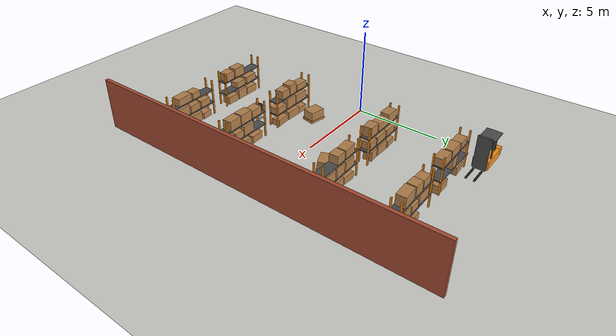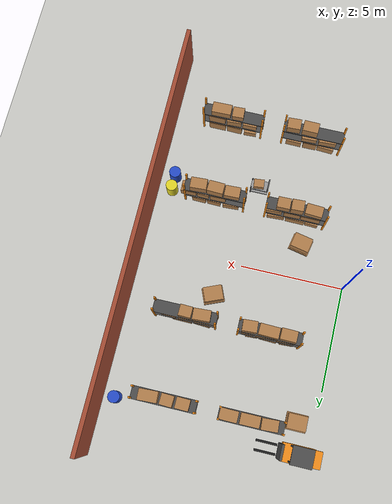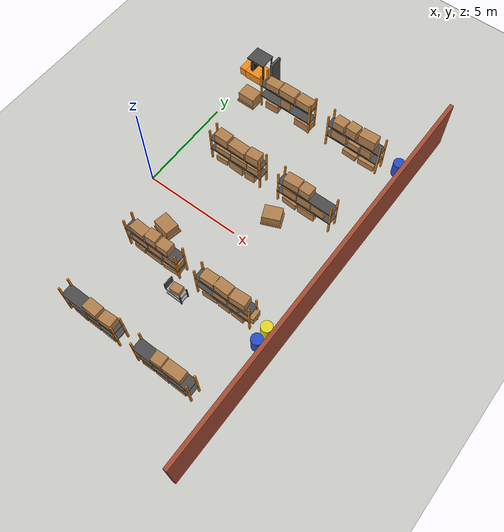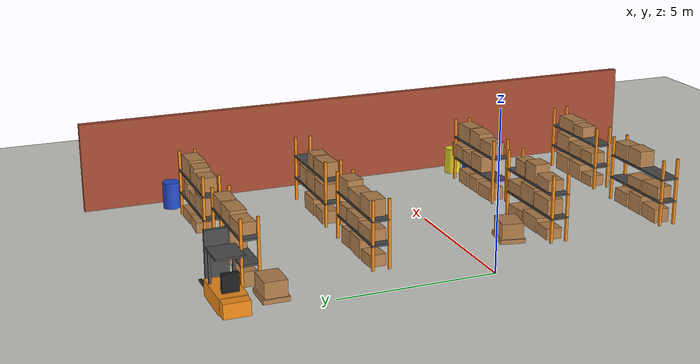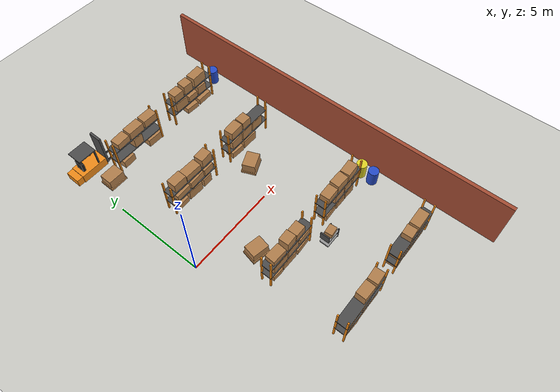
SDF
<sdf version="1.6">
 <world name="warehouse_w4_visually_degraded">
  <model name="ground_plane">
   <static>true</static>
   <link name="link">
    <collision name="collision">
     <geometry><plane><normal>0 0 1</normal><size>25 25</size></plane></geometry>
     <surface><friction><ode><mu>100</mu><mu2>50</mu2></ode></friction></surface>
    </collision>
    <visual name="visual">
     <geometry><plane><normal>0 0 1</normal><size>25 25</size></plane></geometry>
     <material>
      <script><uri>file://media/materials/scripts/gazebo.material</uri><name>Gazebo/CeilingTiled</name></script>
     </material>
    </visual>
   </link>
  </model>
  <model name="wall_east">
   <static>true</static>
   <pose>10 0 1.5 0 0 1.5708</pose>
   <link name="link">
    <collision name="col"><geometry><box><size>20.4 0.2 3.0</size></box></geometry></collision>
    <visual name="vis">
     <geometry><box><size>20.4 0.2 3.0</size></box></geometry>
     <material>
      <script><uri>file://media/materials/scripts/gazebo.material</uri><name>Gazebo/Bricks</name></script>
     </material>
    </visual>
   </link>
  </model>
  <model name="rack_r1_c">
   <static>true</static>
   <pose>3 7 0 0 0 0</pose>
   <link name="link">
    <collision name="col">
     <pose>0 0 1.1 0 0 0</pose>
     <geometry><box><size>3.0 0.6 2.2</size></box></geometry>
    </collision>
    <visual name="up_-1-0">
     <pose>-1.460 -0.260 1.100 0 0 0.000</pose>
     <geometry><box><size>0.080 0.080 2.200</size></box></geometry>
     <material>
      <script><uri>file://media/materials/scripts/gazebo.material</uri><name>Gazebo/Orange</name></script>
     </material>
    </visual>
    <visual name="up_-1+0">
     <pose>-1.460 0.260 1.100 0 0 0.000</pose>
     <geometry><box><size>0.080 0.080 2.200</size></box></geometry>
     <material>
      <script><uri>file://media/materials/scripts/gazebo.material</uri><name>Gazebo/Orange</name></script>
     </material>
    </visual>
    <visual name="up_+1-0">
     <pose>1.460 -0.260 1.100 0 0 0.000</pose>
     <geometry><box><size>0.080 0.080 2.200</size></box></geometry>
     <material>
      <script><uri>file://media/materials/scripts/gazebo.material</uri><name>Gazebo/Orange</name></script>
     </material>
    </visual>
    <visual name="up_+1+0">
     <pose>1.460 0.260 1.100 0 0 0.000</pose>
     <geometry><box><size>0.080 0.080 2.200</size></box></geometry>
     <material>
      <script><uri>file://media/materials/scripts/gazebo.material</uri><name>Gazebo/Orange</name></script>
     </material>
    </visual>
    <visual name="s1">
     <pose>0.000 0.000 0.780 0 0 0.000</pose>
     <geometry><box><size>3.000 0.600 0.060</size></box></geometry>
     <material>
      <script><uri>file://media/materials/scripts/gazebo.material</uri><name>Gazebo/DarkGrey</name></script>
     </material>
    </visual>
    <visual name="s2">
     <pose>0.000 0.000 1.550 0 0 0.000</pose>
     <geometry><box><size>3.000 0.600 0.060</size></box></geometry>
     <material>
      <script><uri>file://media/materials/scripts/gazebo.material</uri><name>Gazebo/DarkGrey</name></script>
     </material>
    </visual>
    <visual name="box_f0">
     <pose>-0.838 0.000 0.236 0 0 0.045</pose>
     <geometry><box><size>0.724 0.520 0.473</size></box></geometry>
     <material>
      <script><uri>file://media/materials/scripts/gazebo.material</uri><name>Gazebo/Wood</name></script>
     </material>
    </visual>
    <visual name="box_f2">
     <pose>1.030 0.000 0.244 0 0 -0.015</pose>
     <geometry><box><size>0.887 0.520 0.487</size></box></geometry>
     <material>
      <script><uri>file://media/materials/scripts/gazebo.material</uri><name>Gazebo/WoodPallet</name></script>
     </material>
    </visual>
    <visual name="box_a1">
     <pose>0.006 0.000 1.110 0 0 0.040</pose>
     <geometry><box><size>0.558 0.520 0.601</size></box></geometry>
     <material>
      <script><uri>file://media/materials/scripts/gazebo.material</uri><name>Gazebo/Wood</name></script>
     </material>
    </visual>
    <visual name="box_b0">
     <pose>-0.818 0.000 1.772 0 0 0.054</pose>
     <geometry><box><size>0.763 0.520 0.384</size></box></geometry>
     <material>
      <script><uri>file://media/materials/scripts/gazebo.material</uri><name>Gazebo/WoodPallet</name></script>
     </material>
    </visual>
    <visual name="box_b1">
     <pose>0.074 0.000 1.812 0 0 0.005</pose>
     <geometry><box><size>0.899 0.520 0.464</size></box></geometry>
     <material>
      <script><uri>file://media/materials/scripts/gazebo.material</uri><name>Gazebo/WoodPallet</name></script>
     </material>
    </visual>
    <visual name="box_b2">
     <pose>1.036 0.000 1.809 0 0 -0.015</pose>
     <geometry><box><size>0.835 0.520 0.458</size></box></geometry>
     <material>
      <script><uri>file://media/materials/scripts/gazebo.material</uri><name>Gazebo/WoodPallet</name></script>
     </material>
    </visual>
   </link>
  </model>
  <model name="rack_r1_d">
   <static>true</static>
   <pose>7 7 0 0 0 0</pose>
   <link name="link">
    <collision name="col">
     <pose>0 0 1.1 0 0 0</pose>
     <geometry><box><size>3.0 0.6 2.2</size></box></geometry>
    </collision>
    <visual name="up_-1-0">
     <pose>-1.460 -0.260 1.100 0 0 0.000</pose>
     <geometry><box><size>0.080 0.080 2.200</size></box></geometry>
     <material>
      <script><uri>file://media/materials/scripts/gazebo.material</uri><name>Gazebo/Orange</name></script>
     </material>
    </visual>
    <visual name="up_-1+0">
     <pose>-1.460 0.260 1.100 0 0 0.000</pose>
     <geometry><box><size>0.080 0.080 2.200</size></box></geometry>
     <material>
      <script><uri>file://media/materials/scripts/gazebo.material</uri><name>Gazebo/Orange</name></script>
     </material>
    </visual>
    <visual name="up_+1-0">
     <pose>1.460 -0.260 1.100 0 0 0.000</pose>
     <geometry><box><size>0.080 0.080 2.200</size></box></geometry>
     <material>
      <script><uri>file://media/materials/scripts/gazebo.material</uri><name>Gazebo/Orange</name></script>
     </material>
    </visual>
    <visual name="up_+1+0">
     <pose>1.460 0.260 1.100 0 0 0.000</pose>
     <geometry><box><size>0.080 0.080 2.200</size></box></geometry>
     <material>
      <script><uri>file://media/materials/scripts/gazebo.material</uri><name>Gazebo/Orange</name></script>
     </material>
    </visual>
    <visual name="s1">
     <pose>0.000 0.000 0.780 0 0 0.000</pose>
     <geometry><box><size>3.000 0.600 0.060</size></box></geometry>
     <material>
      <script><uri>file://media/materials/scripts/gazebo.material</uri><name>Gazebo/DarkGrey</name></script>
     </material>
    </visual>
    <visual name="s2">
     <pose>0.000 0.000 1.550 0 0 0.000</pose>
     <geometry><box><size>3.000 0.600 0.060</size></box></geometry>
     <material>
      <script><uri>file://media/materials/scripts/gazebo.material</uri><name>Gazebo/DarkGrey</name></script>
     </material>
    </visual>
    <visual name="box_f1">
     <pose>-0.074 0.000 0.176 0 0 -0.053</pose>
     <geometry><box><size>0.785 0.520 0.352</size></box></geometry>
     <material>
      <script><uri>file://media/materials/scripts/gazebo.material</uri><name>Gazebo/WoodPallet</name></script>
     </material>
    </visual>
    <visual name="box_f2">
     <pose>0.878 0.000 0.185 0 0 0.020</pose>
     <geometry><box><size>0.894 0.520 0.369</size></box></geometry>
     <material>
      <script><uri>file://media/materials/scripts/gazebo.material</uri><name>Gazebo/WoodPallet</name></script>
     </material>
    </visual>
    <visual name="box_a0">
     <pose>-0.780 0.000 1.104 0 0 -0.031</pose>
     <geometry><box><size>0.839 0.520 0.588</size></box></geometry>
     <material>
      <script><uri>file://media/materials/scripts/gazebo.material</uri><name>Gazebo/Wood</name></script>
     </material>
    </visual>
    <visual name="box_a1">
     <pose>0.057 0.000 0.998 0 0 -0.009</pose>
     <geometry><box><size>0.626 0.520 0.376</size></box></geometry>
     <material>
      <script><uri>file://media/materials/scripts/gazebo.material</uri><name>Gazebo/Wood</name></script>
     </material>
    </visual>
    <visual name="box_a2">
     <pose>0.765 0.000 1.073 0 0 -0.053</pose>
     <geometry><box><size>0.572 0.520 0.526</size></box></geometry>
     <material>
      <script><uri>file://media/materials/scripts/gazebo.material</uri><name>Gazebo/WoodPallet</name></script>
     </material>
    </visual>
    <visual name="box_b0">
     <pose>-0.887 0.000 1.816 0 0 -0.027</pose>
     <geometry><box><size>0.626 0.520 0.471</size></box></geometry>
     <material>
      <script><uri>file://media/materials/scripts/gazebo.material</uri><name>Gazebo/WoodPallet</name></script>
     </material>
    </visual>
    <visual name="box_b1">
     <pose>-0.174 0.000 1.864 0 0 -0.048</pose>
     <geometry><box><size>0.580 0.520 0.568</size></box></geometry>
     <material>
      <script><uri>file://media/materials/scripts/gazebo.material</uri><name>Gazebo/WoodPallet</name></script>
     </material>
    </visual>
    <visual name="box_b2">
     <pose>0.678 0.000 1.886 0 0 0.042</pose>
     <geometry><box><size>0.884 0.520 0.612</size></box></geometry>
     <material>
      <script><uri>file://media/materials/scripts/gazebo.material</uri><name>Gazebo/WoodPallet</name></script>
     </material>
    </visual>
   </link>
  </model>
  <model name="rack_r2_c">
   <static>true</static>
   <pose>3 3 0 0 0 0</pose>
   <link name="link">
    <collision name="col">
     <pose>0 0 1.1 0 0 0</pose>
     <geometry><box><size>3.0 0.6 2.2</size></box></geometry>
    </collision>
    <visual name="up_-1-0">
     <pose>-1.460 -0.260 1.100 0 0 0.000</pose>
     <geometry><box><size>0.080 0.080 2.200</size></box></geometry>
     <material>
      <script><uri>file://media/materials/scripts/gazebo.material</uri><name>Gazebo/Orange</name></script>
     </material>
    </visual>
    <visual name="up_-1+0">
     <pose>-1.460 0.260 1.100 0 0 0.000</pose>
     <geometry><box><size>0.080 0.080 2.200</size></box></geometry>
     <material>
      <script><uri>file://media/materials/scripts/gazebo.material</uri><name>Gazebo/Orange</name></script>
     </material>
    </visual>
    <visual name="up_+1-0">
     <pose>1.460 -0.260 1.100 0 0 0.000</pose>
     <geometry><box><size>0.080 0.080 2.200</size></box></geometry>
     <material>
      <script><uri>file://media/materials/scripts/gazebo.material</uri><name>Gazebo/Orange</name></script>
     </material>
    </visual>
    <visual name="up_+1+0">
     <pose>1.460 0.260 1.100 0 0 0.000</pose>
     <geometry><box><size>0.080 0.080 2.200</size></box></geometry>
     <material>
      <script><uri>file://media/materials/scripts/gazebo.material</uri><name>Gazebo/Orange</name></script>
     </material>
    </visual>
    <visual name="s1">
     <pose>0.000 0.000 0.780 0 0 0.000</pose>
     <geometry><box><size>3.000 0.600 0.060</size></box></geometry>
     <material>
      <script><uri>file://media/materials/scripts/gazebo.material</uri><name>Gazebo/DarkGrey</name></script>
     </material>
    </visual>
    <visual name="s2">
     <pose>0.000 0.000 1.550 0 0 0.000</pose>
     <geometry><box><size>3.000 0.600 0.060</size></box></geometry>
     <material>
      <script><uri>file://media/materials/scripts/gazebo.material</uri><name>Gazebo/DarkGrey</name></script>
     </material>
    </visual>
    <visual name="box_f0">
     <pose>-0.875 0.000 0.189 0 0 0.046</pose>
     <geometry><box><size>0.650 0.520 0.378</size></box></geometry>
     <material>
      <script><uri>file://media/materials/scripts/gazebo.material</uri><name>Gazebo/Wood</name></script>
     </material>
    </visual>
    <visual name="box_f1">
     <pose>-0.007 0.000 0.300 0 0 -0.040</pose>
     <geometry><box><size>0.850 0.520 0.600</size></box></geometry>
     <material>
      <script><uri>file://media/materials/scripts/gazebo.material</uri><name>Gazebo/WoodPallet</name></script>
     </material>
    </visual>
    <visual name="box_f2">
     <pose>0.808 0.000 0.274 0 0 0.052</pose>
     <geometry><box><size>0.560 0.520 0.549</size></box></geometry>
     <material>
      <script><uri>file://media/materials/scripts/gazebo.material</uri><name>Gazebo/WoodPallet</name></script>
     </material>
    </visual>
    <visual name="box_a0">
     <pose>-0.768 0.000 1.000 0 0 0.043</pose>
     <geometry><box><size>0.865 0.520 0.379</size></box></geometry>
     <material>
      <script><uri>file://media/materials/scripts/gazebo.material</uri><name>Gazebo/WoodPallet</name></script>
     </material>
    </visual>
    <visual name="box_a1">
     <pose>0.180 0.000 1.032 0 0 0.045</pose>
     <geometry><box><size>0.917 0.520 0.444</size></box></geometry>
     <material>
      <script><uri>file://media/materials/scripts/gazebo.material</uri><name>Gazebo/WoodPallet</name></script>
     </material>
    </visual>
    <visual name="box_a2">
     <pose>0.994 0.000 1.029 0 0 0.056</pose>
     <geometry><box><size>0.627 0.520 0.439</size></box></geometry>
     <material>
      <script><uri>file://media/materials/scripts/gazebo.material</uri><name>Gazebo/Wood</name></script>
     </material>
    </visual>
    <visual name="box_b0">
     <pose>-0.823 0.000 1.847 0 0 -0.020</pose>
     <geometry><box><size>0.754 0.520 0.533</size></box></geometry>
     <material>
      <script><uri>file://media/materials/scripts/gazebo.material</uri><name>Gazebo/WoodPallet</name></script>
     </material>
    </visual>
    <visual name="box_b1">
     <pose>0.072 0.000 1.779 0 0 -0.028</pose>
     <geometry><box><size>0.938 0.520 0.398</size></box></geometry>
     <material>
      <script><uri>file://media/materials/scripts/gazebo.material</uri><name>Gazebo/WoodPallet</name></script>
     </material>
    </visual>
    <visual name="box_b2">
     <pose>0.973 0.000 1.861 0 0 0.058</pose>
     <geometry><box><size>0.688 0.520 0.562</size></box></geometry>
     <material>
      <script><uri>file://media/materials/scripts/gazebo.material</uri><name>Gazebo/WoodPallet</name></script>
     </material>
    </visual>
   </link>
  </model>
  <model name="rack_r2_d">
   <static>true</static>
   <pose>7 3 0 0 0 0</pose>
   <link name="link">
    <collision name="col">
     <pose>0 0 1.1 0 0 0</pose>
     <geometry><box><size>3.0 0.6 2.2</size></box></geometry>
    </collision>
    <visual name="up_-1-0">
     <pose>-1.460 -0.260 1.100 0 0 0.000</pose>
     <geometry><box><size>0.080 0.080 2.200</size></box></geometry>
     <material>
      <script><uri>file://media/materials/scripts/gazebo.material</uri><name>Gazebo/Orange</name></script>
     </material>
    </visual>
    <visual name="up_-1+0">
     <pose>-1.460 0.260 1.100 0 0 0.000</pose>
     <geometry><box><size>0.080 0.080 2.200</size></box></geometry>
     <material>
      <script><uri>file://media/materials/scripts/gazebo.material</uri><name>Gazebo/Orange</name></script>
     </material>
    </visual>
    <visual name="up_+1-0">
     <pose>1.460 -0.260 1.100 0 0 0.000</pose>
     <geometry><box><size>0.080 0.080 2.200</size></box></geometry>
     <material>
      <script><uri>file://media/materials/scripts/gazebo.material</uri><name>Gazebo/Orange</name></script>
     </material>
    </visual>
    <visual name="up_+1+0">
     <pose>1.460 0.260 1.100 0 0 0.000</pose>
     <geometry><box><size>0.080 0.080 2.200</size></box></geometry>
     <material>
      <script><uri>file://media/materials/scripts/gazebo.material</uri><name>Gazebo/Orange</name></script>
     </material>
    </visual>
    <visual name="s1">
     <pose>0.000 0.000 0.780 0 0 0.000</pose>
     <geometry><box><size>3.000 0.600 0.060</size></box></geometry>
     <material>
      <script><uri>file://media/materials/scripts/gazebo.material</uri><name>Gazebo/DarkGrey</name></script>
     </material>
    </visual>
    <visual name="s2">
     <pose>0.000 0.000 1.550 0 0 0.000</pose>
     <geometry><box><size>3.000 0.600 0.060</size></box></geometry>
     <material>
      <script><uri>file://media/materials/scripts/gazebo.material</uri><name>Gazebo/DarkGrey</name></script>
     </material>
    </visual>
    <visual name="box_f0">
     <pose>-0.810 0.000 0.209 0 0 -0.060</pose>
     <geometry><box><size>0.781 0.520 0.419</size></box></geometry>
     <material>
      <script><uri>file://media/materials/scripts/gazebo.material</uri><name>Gazebo/WoodPallet</name></script>
     </material>
    </visual>
    <visual name="box_f1">
     <pose>0.139 0.000 0.275 0 0 -0.008</pose>
     <geometry><box><size>0.926 0.520 0.549</size></box></geometry>
     <material>
      <script><uri>file://media/materials/scripts/gazebo.material</uri><name>Gazebo/WoodPallet</name></script>
     </material>
    </visual>
    <visual name="box_a0">
     <pose>-0.824 0.000 1.075 0 0 0.024</pose>
     <geometry><box><size>0.753 0.520 0.530</size></box></geometry>
     <material>
      <script><uri>file://media/materials/scripts/gazebo.material</uri><name>Gazebo/WoodPallet</name></script>
     </material>
    </visual>
    <visual name="box_a1">
     <pose>-0.038 0.000 1.112 0 0 0.048</pose>
     <geometry><box><size>0.718 0.520 0.604</size></box></geometry>
     <material>
      <script><uri>file://media/materials/scripts/gazebo.material</uri><name>Gazebo/WoodPallet</name></script>
     </material>
    </visual>
    <visual name="box_a2">
     <pose>0.763 0.000 1.098 0 0 -0.035</pose>
     <geometry><box><size>0.712 0.520 0.575</size></box></geometry>
     <material>
      <script><uri>file://media/materials/scripts/gazebo.material</uri><name>Gazebo/WoodPallet</name></script>
     </material>
    </visual>
    <visual name="box_b0">
     <pose>-0.790 0.000 1.824 0 0 0.055</pose>
     <geometry><box><size>0.820 0.520 0.488</size></box></geometry>
     <material>
      <script><uri>file://media/materials/scripts/gazebo.material</uri><name>Gazebo/WoodPallet</name></script>
     </material>
    </visual>
    <visual name="box_b1">
     <pose>-0.034 0.000 1.825 0 0 -0.020</pose>
     <geometry><box><size>0.584 0.520 0.489</size></box></geometry>
     <material>
      <script><uri>file://media/materials/scripts/gazebo.material</uri><name>Gazebo/WoodPallet</name></script>
     </material>
    </visual>
   </link>
  </model>
  <model name="rack_r3_c">
   <static>true</static>
   <pose>3 -3 0 0 0 0</pose>
   <link name="link">
    <collision name="col">
     <pose>0 0 1.1 0 0 0</pose>
     <geometry><box><size>3.0 0.6 2.2</size></box></geometry>
    </collision>
    <visual name="up_-1-0">
     <pose>-1.460 -0.260 1.100 0 0 0.000</pose>
     <geometry><box><size>0.080 0.080 2.200</size></box></geometry>
     <material>
      <script><uri>file://media/materials/scripts/gazebo.material</uri><name>Gazebo/Orange</name></script>
     </material>
    </visual>
    <visual name="up_-1+0">
     <pose>-1.460 0.260 1.100 0 0 0.000</pose>
     <geometry><box><size>0.080 0.080 2.200</size></box></geometry>
     <material>
      <script><uri>file://media/materials/scripts/gazebo.material</uri><name>Gazebo/Orange</name></script>
     </material>
    </visual>
    <visual name="up_+1-0">
     <pose>1.460 -0.260 1.100 0 0 0.000</pose>
     <geometry><box><size>0.080 0.080 2.200</size></box></geometry>
     <material>
      <script><uri>file://media/materials/scripts/gazebo.material</uri><name>Gazebo/Orange</name></script>
     </material>
    </visual>
    <visual name="up_+1+0">
     <pose>1.460 0.260 1.100 0 0 0.000</pose>
     <geometry><box><size>0.080 0.080 2.200</size></box></geometry>
     <material>
      <script><uri>file://media/materials/scripts/gazebo.material</uri><name>Gazebo/Orange</name></script>
     </material>
    </visual>
    <visual name="s1">
     <pose>0.000 0.000 0.780 0 0 0.000</pose>
     <geometry><box><size>3.000 0.600 0.060</size></box></geometry>
     <material>
      <script><uri>file://media/materials/scripts/gazebo.material</uri><name>Gazebo/DarkGrey</name></script>
     </material>
    </visual>
    <visual name="s2">
     <pose>0.000 0.000 1.550 0 0 0.000</pose>
     <geometry><box><size>3.000 0.600 0.060</size></box></geometry>
     <material>
      <script><uri>file://media/materials/scripts/gazebo.material</uri><name>Gazebo/DarkGrey</name></script>
     </material>
    </visual>
    <visual name="box_f0">
     <pose>-0.885 0.000 0.178 0 0 -0.045</pose>
     <geometry><box><size>0.630 0.520 0.356</size></box></geometry>
     <material>
      <script><uri>file://media/materials/scripts/gazebo.material</uri><name>Gazebo/WoodPallet</name></script>
     </material>
    </visual>
    <visual name="box_f1">
     <pose>-0.057 0.000 0.238 0 0 -0.016</pose>
     <geometry><box><size>0.929 0.520 0.476</size></box></geometry>
     <material>
      <script><uri>file://media/materials/scripts/gazebo.material</uri><name>Gazebo/WoodPallet</name></script>
     </material>
    </visual>
    <visual name="box_f2">
     <pose>0.921 0.000 0.190 0 0 0.056</pose>
     <geometry><box><size>0.849 0.520 0.381</size></box></geometry>
     <material>
      <script><uri>file://media/materials/scripts/gazebo.material</uri><name>Gazebo/WoodPallet</name></script>
     </material>
    </visual>
    <visual name="box_a0">
     <pose>-0.739 0.000 1.063 0 0 -0.015</pose>
     <geometry><box><size>0.922 0.520 0.505</size></box></geometry>
     <material>
      <script><uri>file://media/materials/scripts/gazebo.material</uri><name>Gazebo/WoodPallet</name></script>
     </material>
    </visual>
    <visual name="box_a1">
     <pose>0.171 0.000 1.097 0 0 0.024</pose>
     <geometry><box><size>0.787 0.520 0.574</size></box></geometry>
     <material>
      <script><uri>file://media/materials/scripts/gazebo.material</uri><name>Gazebo/Wood</name></script>
     </material>
    </visual>
    <visual name="box_a2">
     <pose>1.067 0.000 1.001 0 0 0.034</pose>
     <geometry><box><size>0.790 0.520 0.383</size></box></geometry>
     <material>
      <script><uri>file://media/materials/scripts/gazebo.material</uri><name>Gazebo/Wood</name></script>
     </material>
    </visual>
    <visual name="box_b0">
     <pose>-0.793 0.000 1.764 0 0 -0.058</pose>
     <geometry><box><size>0.815 0.520 0.369</size></box></geometry>
     <material>
      <script><uri>file://media/materials/scripts/gazebo.material</uri><name>Gazebo/Wood</name></script>
     </material>
    </visual>
    <visual name="box_b1">
     <pose>0.017 0.000 1.885 0 0 0.039</pose>
     <geometry><box><size>0.592 0.520 0.609</size></box></geometry>
     <material>
      <script><uri>file://media/materials/scripts/gazebo.material</uri><name>Gazebo/WoodPallet</name></script>
     </material>
    </visual>
    <visual name="box_b2">
     <pose>0.675 0.000 1.825 0 0 0.014</pose>
     <geometry><box><size>0.620 0.520 0.491</size></box></geometry>
     <material>
      <script><uri>file://media/materials/scripts/gazebo.material</uri><name>Gazebo/WoodPallet</name></script>
     </material>
    </visual>
   </link>
  </model>
  <model name="rack_r3_d">
   <static>true</static>
   <pose>7 -3 0 0 0 0</pose>
   <link name="link">
    <collision name="col">
     <pose>0 0 1.1 0 0 0</pose>
     <geometry><box><size>3.0 0.6 2.2</size></box></geometry>
    </collision>
    <visual name="up_-1-0">
     <pose>-1.460 -0.260 1.100 0 0 0.000</pose>
     <geometry><box><size>0.080 0.080 2.200</size></box></geometry>
     <material>
      <script><uri>file://media/materials/scripts/gazebo.material</uri><name>Gazebo/Orange</name></script>
     </material>
    </visual>
    <visual name="up_-1+0">
     <pose>-1.460 0.260 1.100 0 0 0.000</pose>
     <geometry><box><size>0.080 0.080 2.200</size></box></geometry>
     <material>
      <script><uri>file://media/materials/scripts/gazebo.material</uri><name>Gazebo/Orange</name></script>
     </material>
    </visual>
    <visual name="up_+1-0">
     <pose>1.460 -0.260 1.100 0 0 0.000</pose>
     <geometry><box><size>0.080 0.080 2.200</size></box></geometry>
     <material>
      <script><uri>file://media/materials/scripts/gazebo.material</uri><name>Gazebo/Orange</name></script>
     </material>
    </visual>
    <visual name="up_+1+0">
     <pose>1.460 0.260 1.100 0 0 0.000</pose>
     <geometry><box><size>0.080 0.080 2.200</size></box></geometry>
     <material>
      <script><uri>file://media/materials/scripts/gazebo.material</uri><name>Gazebo/Orange</name></script>
     </material>
    </visual>
    <visual name="s1">
     <pose>0.000 0.000 0.780 0 0 0.000</pose>
     <geometry><box><size>3.000 0.600 0.060</size></box></geometry>
     <material>
      <script><uri>file://media/materials/scripts/gazebo.material</uri><name>Gazebo/DarkGrey</name></script>
     </material>
    </visual>
    <visual name="s2">
     <pose>0.000 0.000 1.550 0 0 0.000</pose>
     <geometry><box><size>3.000 0.600 0.060</size></box></geometry>
     <material>
      <script><uri>file://media/materials/scripts/gazebo.material</uri><name>Gazebo/DarkGrey</name></script>
     </material>
    </visual>
    <visual name="box_f0">
     <pose>-0.807 0.000 0.219 0 0 0.052</pose>
     <geometry><box><size>0.787 0.520 0.437</size></box></geometry>
     <material>
      <script><uri>file://media/materials/scripts/gazebo.material</uri><name>Gazebo/Wood</name></script>
     </material>
    </visual>
    <visual name="box_f1">
     <pose>0.021 0.000 0.238 0 0 -0.015</pose>
     <geometry><box><size>0.648 0.520 0.475</size></box></geometry>
     <material>
      <script><uri>file://media/materials/scripts/gazebo.material</uri><name>Gazebo/WoodPallet</name></script>
     </material>
    </visual>
    <visual name="box_f2">
     <pose>0.765 0.000 0.241 0 0 -0.029</pose>
     <geometry><box><size>0.680 0.520 0.482</size></box></geometry>
     <material>
      <script><uri>file://media/materials/scripts/gazebo.material</uri><name>Gazebo/Wood</name></script>
     </material>
    </visual>
    <visual name="box_a1">
     <pose>-0.176 0.000 1.087 0 0 0.018</pose>
     <geometry><box><size>0.745 0.520 0.555</size></box></geometry>
     <material>
      <script><uri>file://media/materials/scripts/gazebo.material</uri><name>Gazebo/Wood</name></script>
     </material>
    </visual>
    <visual name="box_a2">
     <pose>0.551 0.000 1.025 0 0 -0.031</pose>
     <geometry><box><size>0.557 0.520 0.429</size></box></geometry>
     <material>
      <script><uri>file://media/materials/scripts/gazebo.material</uri><name>Gazebo/WoodPallet</name></script>
     </material>
    </visual>
    <visual name="box_a3">
     <pose>1.286 0.000 1.057 0 0 0.030</pose>
     <geometry><box><size>0.739 0.520 0.493</size></box></geometry>
     <material>
      <script><uri>file://media/materials/scripts/gazebo.material</uri><name>Gazebo/Wood</name></script>
     </material>
    </visual>
    <visual name="box_b0">
     <pose>-0.834 0.000 1.796 0 0 0.027</pose>
     <geometry><box><size>0.731 0.520 0.433</size></box></geometry>
     <material>
      <script><uri>file://media/materials/scripts/gazebo.material</uri><name>Gazebo/Wood</name></script>
     </material>
    </visual>
    <visual name="box_b1">
     <pose>-0.037 0.000 1.858 0 0 -0.034</pose>
     <geometry><box><size>0.764 0.520 0.556</size></box></geometry>
     <material>
      <script><uri>file://media/materials/scripts/gazebo.material</uri><name>Gazebo/Wood</name></script>
     </material>
    </visual>
    <visual name="box_b2">
     <pose>0.800 0.000 1.858 0 0 0.058</pose>
     <geometry><box><size>0.786 0.520 0.555</size></box></geometry>
     <material>
      <script><uri>file://media/materials/scripts/gazebo.material</uri><name>Gazebo/WoodPallet</name></script>
     </material>
    </visual>
   </link>
  </model>
  <model name="rack_r4_c">
   <static>true</static>
   <pose>3 -7 0 0 0 0</pose>
   <link name="link">
    <collision name="col">
     <pose>0 0 1.1 0 0 0</pose>
     <geometry><box><size>3.0 0.6 2.2</size></box></geometry>
    </collision>
    <visual name="up_-1-0">
     <pose>-1.460 -0.260 1.100 0 0 0.000</pose>
     <geometry><box><size>0.080 0.080 2.200</size></box></geometry>
     <material>
      <script><uri>file://media/materials/scripts/gazebo.material</uri><name>Gazebo/Orange</name></script>
     </material>
    </visual>
    <visual name="up_-1+0">
     <pose>-1.460 0.260 1.100 0 0 0.000</pose>
     <geometry><box><size>0.080 0.080 2.200</size></box></geometry>
     <material>
      <script><uri>file://media/materials/scripts/gazebo.material</uri><name>Gazebo/Orange</name></script>
     </material>
    </visual>
    <visual name="up_+1-0">
     <pose>1.460 -0.260 1.100 0 0 0.000</pose>
     <geometry><box><size>0.080 0.080 2.200</size></box></geometry>
     <material>
      <script><uri>file://media/materials/scripts/gazebo.material</uri><name>Gazebo/Orange</name></script>
     </material>
    </visual>
    <visual name="up_+1+0">
     <pose>1.460 0.260 1.100 0 0 0.000</pose>
     <geometry><box><size>0.080 0.080 2.200</size></box></geometry>
     <material>
      <script><uri>file://media/materials/scripts/gazebo.material</uri><name>Gazebo/Orange</name></script>
     </material>
    </visual>
    <visual name="s1">
     <pose>0.000 0.000 0.780 0 0 0.000</pose>
     <geometry><box><size>3.000 0.600 0.060</size></box></geometry>
     <material>
      <script><uri>file://media/materials/scripts/gazebo.material</uri><name>Gazebo/DarkGrey</name></script>
     </material>
    </visual>
    <visual name="s2">
     <pose>0.000 0.000 1.550 0 0 0.000</pose>
     <geometry><box><size>3.000 0.600 0.060</size></box></geometry>
     <material>
      <script><uri>file://media/materials/scripts/gazebo.material</uri><name>Gazebo/DarkGrey</name></script>
     </material>
    </visual>
    <visual name="box_f0">
     <pose>-0.792 0.000 0.229 0 0 -0.056</pose>
     <geometry><box><size>0.815 0.520 0.458</size></box></geometry>
     <material>
      <script><uri>file://media/materials/scripts/gazebo.material</uri><name>Gazebo/WoodPallet</name></script>
     </material>
    </visual>
    <visual name="box_f1">
     <pose>0.020 0.000 0.306 0 0 0.002</pose>
     <geometry><box><size>0.679 0.520 0.612</size></box></geometry>
     <material>
      <script><uri>file://media/materials/scripts/gazebo.material</uri><name>Gazebo/WoodPallet</name></script>
     </material>
    </visual>
    <visual name="box_f2">
     <pose>0.836 0.000 0.231 0 0 -0.017</pose>
     <geometry><box><size>0.767 0.520 0.462</size></box></geometry>
     <material>
      <script><uri>file://media/materials/scripts/gazebo.material</uri><name>Gazebo/Wood</name></script>
     </material>
    </visual>
    <visual name="box_a0">
     <pose>-0.773 0.000 1.012 0 0 0.051</pose>
     <geometry><box><size>0.854 0.520 0.405</size></box></geometry>
     <material>
      <script><uri>file://media/materials/scripts/gazebo.material</uri><name>Gazebo/Wood</name></script>
     </material>
    </visual>
    <visual name="box_a1">
     <pose>0.136 0.000 0.989 0 0 0.036</pose>
     <geometry><box><size>0.744 0.520 0.358</size></box></geometry>
     <material>
      <script><uri>file://media/materials/scripts/gazebo.material</uri><name>Gazebo/WoodPallet</name></script>
     </material>
    </visual>
    <visual name="box_b1">
     <pose>0.196 0.000 1.852 0 0 -0.027</pose>
     <geometry><box><size>0.749 0.520 0.543</size></box></geometry>
     <material>
      <script><uri>file://media/materials/scripts/gazebo.material</uri><name>Gazebo/Wood</name></script>
     </material>
    </visual>
    <visual name="box_b2">
     <pose>1.013 0.000 1.829 0 0 0.051</pose>
     <geometry><box><size>0.647 0.520 0.499</size></box></geometry>
     <material>
      <script><uri>file://media/materials/scripts/gazebo.material</uri><name>Gazebo/WoodPallet</name></script>
     </material>
    </visual>
   </link>
  </model>
  <model name="rack_r4_d">
   <static>true</static>
   <pose>7 -7 0 0 0 0</pose>
   <link name="link">
    <collision name="col">
     <pose>0 0 1.1 0 0 0</pose>
     <geometry><box><size>3.0 0.6 2.2</size></box></geometry>
    </collision>
    <visual name="up_-1-0">
     <pose>-1.460 -0.260 1.100 0 0 0.000</pose>
     <geometry><box><size>0.080 0.080 2.200</size></box></geometry>
     <material>
      <script><uri>file://media/materials/scripts/gazebo.material</uri><name>Gazebo/Orange</name></script>
     </material>
    </visual>
    <visual name="up_-1+0">
     <pose>-1.460 0.260 1.100 0 0 0.000</pose>
     <geometry><box><size>0.080 0.080 2.200</size></box></geometry>
     <material>
      <script><uri>file://media/materials/scripts/gazebo.material</uri><name>Gazebo/Orange</name></script>
     </material>
    </visual>
    <visual name="up_+1-0">
     <pose>1.460 -0.260 1.100 0 0 0.000</pose>
     <geometry><box><size>0.080 0.080 2.200</size></box></geometry>
     <material>
      <script><uri>file://media/materials/scripts/gazebo.material</uri><name>Gazebo/Orange</name></script>
     </material>
    </visual>
    <visual name="up_+1+0">
     <pose>1.460 0.260 1.100 0 0 0.000</pose>
     <geometry><box><size>0.080 0.080 2.200</size></box></geometry>
     <material>
      <script><uri>file://media/materials/scripts/gazebo.material</uri><name>Gazebo/Orange</name></script>
     </material>
    </visual>
    <visual name="s1">
     <pose>0.000 0.000 0.780 0 0 0.000</pose>
     <geometry><box><size>3.000 0.600 0.060</size></box></geometry>
     <material>
      <script><uri>file://media/materials/scripts/gazebo.material</uri><name>Gazebo/DarkGrey</name></script>
     </material>
    </visual>
    <visual name="s2">
     <pose>0.000 0.000 1.550 0 0 0.000</pose>
     <geometry><box><size>3.000 0.600 0.060</size></box></geometry>
     <material>
      <script><uri>file://media/materials/scripts/gazebo.material</uri><name>Gazebo/DarkGrey</name></script>
     </material>
    </visual>
    <visual name="box_f0">
     <pose>-0.898 0.000 0.184 0 0 0.043</pose>
     <geometry><box><size>0.605 0.520 0.369</size></box></geometry>
     <material>
      <script><uri>file://media/materials/scripts/gazebo.material</uri><name>Gazebo/Wood</name></script>
     </material>
    </visual>
    <visual name="box_f1">
     <pose>-0.104 0.000 0.286 0 0 -0.024</pose>
     <geometry><box><size>0.753 0.520 0.572</size></box></geometry>
     <material>
      <script><uri>file://media/materials/scripts/gazebo.material</uri><name>Gazebo/WoodPallet</name></script>
     </material>
    </visual>
    <visual name="box_f2">
     <pose>0.766 0.000 0.292 0 0 -0.002</pose>
     <geometry><box><size>0.814 0.520 0.584</size></box></geometry>
     <material>
      <script><uri>file://media/materials/scripts/gazebo.material</uri><name>Gazebo/Wood</name></script>
     </material>
    </visual>
    <visual name="box_a0">
     <pose>-0.861 0.000 1.010 0 0 0.009</pose>
     <geometry><box><size>0.679 0.520 0.401</size></box></geometry>
     <material>
      <script><uri>file://media/materials/scripts/gazebo.material</uri><name>Gazebo/WoodPallet</name></script>
     </material>
    </visual>
    <visual name="box_a1">
     <pose>-0.056 0.000 1.028 0 0 0.050</pose>
     <geometry><box><size>0.714 0.520 0.436</size></box></geometry>
     <material>
      <script><uri>file://media/materials/scripts/gazebo.material</uri><name>Gazebo/Wood</name></script>
     </material>
    </visual>
    <visual name="box_a2">
     <pose>0.780 0.000 1.096 0 0 -0.001</pose>
     <geometry><box><size>0.815 0.520 0.572</size></box></geometry>
     <material>
      <script><uri>file://media/materials/scripts/gazebo.material</uri><name>Gazebo/WoodPallet</name></script>
     </material>
    </visual>
    <visual name="box_b1">
     <pose>-0.219 0.000 1.774 0 0 0.056</pose>
     <geometry><box><size>0.556 0.520 0.389</size></box></geometry>
     <material>
      <script><uri>file://media/materials/scripts/gazebo.material</uri><name>Gazebo/WoodPallet</name></script>
     </material>
    </visual>
    <visual name="box_b2">
     <pose>0.606 0.000 1.801 0 0 0.018</pose>
     <geometry><box><size>0.938 0.520 0.441</size></box></geometry>
     <material>
      <script><uri>file://media/materials/scripts/gazebo.material</uri><name>Gazebo/Wood</name></script>
     </material>
    </visual>
   </link>
  </model>
  <model name="pallet_1">
   <static>true</static>
   <pose>2.4 -1.7 0 0 0 -0.2</pose>
   <link name="link">
    <collision name="col">
     <pose>0 0 0.25 0 0 0</pose>
     <geometry><box><size>1.0 0.8 0.5</size></box></geometry>
    </collision>
    <visual name="base">
     <pose>0.000 0.000 0.070 0 0 0.000</pose>
     <geometry><box><size>1.000 0.800 0.140</size></box></geometry>
     <material>
      <script><uri>file://media/materials/scripts/gazebo.material</uri><name>Gazebo/WoodPallet</name></script>
     </material>
    </visual>
    <visual name="load">
     <pose>0.000 0.000 0.390 0 0 0.000</pose>
     <geometry><box><size>0.900 0.700 0.500</size></box></geometry>
     <material>
      <script><uri>file://media/materials/scripts/gazebo.material</uri><name>Gazebo/Wood</name></script>
     </material>
    </visual>
   </link>
  </model>
  <model name="pallet_3">
   <static>true</static>
   <pose>6.0 1.7 0 0 0 0.4</pose>
   <link name="link">
    <collision name="col">
     <pose>0 0 0.25 0 0 0</pose>
     <geometry><box><size>1.0 0.8 0.5</size></box></geometry>
    </collision>
    <visual name="base">
     <pose>0.000 0.000 0.070 0 0 0.000</pose>
     <geometry><box><size>1.000 0.800 0.140</size></box></geometry>
     <material>
      <script><uri>file://media/materials/scripts/gazebo.material</uri><name>Gazebo/WoodPallet</name></script>
     </material>
    </visual>
    <visual name="load">
     <pose>0.000 0.000 0.390 0 0 0.000</pose>
     <geometry><box><size>0.900 0.700 0.500</size></box></geometry>
     <material>
      <script><uri>file://media/materials/scripts/gazebo.material</uri><name>Gazebo/Wood</name></script>
     </material>
    </visual>
   </link>
  </model>
  <model name="pallet_4">
   <static>true</static>
   <pose>0.9 6.6 0 0 0 0.0</pose>
   <link name="link">
    <collision name="col">
     <pose>0 0 0.25 0 0 0</pose>
     <geometry><box><size>1.0 0.8 0.5</size></box></geometry>
    </collision>
    <visual name="base">
     <pose>0.000 0.000 0.070 0 0 0.000</pose>
     <geometry><box><size>1.000 0.800 0.140</size></box></geometry>
     <material>
      <script><uri>file://media/materials/scripts/gazebo.material</uri><name>Gazebo/WoodPallet</name></script>
     </material>
    </visual>
    <visual name="load">
     <pose>0.000 0.000 0.390 0 0 0.000</pose>
     <geometry><box><size>0.900 0.700 0.500</size></box></geometry>
     <material>
      <script><uri>file://media/materials/scripts/gazebo.material</uri><name>Gazebo/Wood</name></script>
     </material>
    </visual>
   </link>
  </model>
  <model name="drum_0">
   <static>true</static>
   <pose>9.2 -3.0 0 0 0 0</pose>
   <link name="link">
    <collision name="col">
     <pose>0 0 0.45 0 0 0</pose>
     <geometry><cylinder><radius>0.28</radius><length>0.9</length></cylinder></geometry>
    </collision>
    <visual name="vis">
     <pose>0 0 0.45 0 0 0</pose>
     <geometry><cylinder><radius>0.28</radius><length>0.9</length></cylinder></geometry>
     <material>
      <script><uri>file://media/materials/scripts/gazebo.material</uri><name>Gazebo/Yellow</name></script>
     </material>
    </visual>
   </link>
  </model>
  <model name="drum_1">
   <static>true</static>
   <pose>9.2 -3.7 0 0 0 0</pose>
   <link name="link">
    <collision name="col">
     <pose>0 0 0.45 0 0 0</pose>
     <geometry><cylinder><radius>0.28</radius><length>0.9</length></cylinder></geometry>
    </collision>
    <visual name="vis">
     <pose>0 0 0.45 0 0 0</pose>
     <geometry><cylinder><radius>0.28</radius><length>0.9</length></cylinder></geometry>
     <material>
      <script><uri>file://media/materials/scripts/gazebo.material</uri><name>Gazebo/Blue</name></script>
     </material>
    </visual>
   </link>
  </model>
  <model name="drum_3">
   <static>true</static>
   <pose>9.3 7.4 0 0 0 0</pose>
   <link name="link">
    <collision name="col">
     <pose>0 0 0.45 0 0 0</pose>
     <geometry><cylinder><radius>0.28</radius><length>0.9</length></cylinder></geometry>
    </collision>
    <visual name="vis">
     <pose>0 0 0.45 0 0 0</pose>
     <geometry><cylinder><radius>0.28</radius><length>0.9</length></cylinder></geometry>
     <material>
      <script><uri>file://media/materials/scripts/gazebo.material</uri><name>Gazebo/Blue</name></script>
     </material>
    </visual>
   </link>
  </model>
  <model name="forklift_1">
   <static>true</static>
   <pose>0.6 8.0 0 0 0 0</pose>
   <link name="body">
    <collision name="col">
     <pose>0.2 0 0.6 0 0 0</pose>
     <geometry><box><size>2.4 0.9 1.2</size></box></geometry>
    </collision>
    <visual name="chassis">
     <pose>0.000 0.000 0.400 0 0 0.000</pose>
     <geometry><box><size>1.500 0.850 0.500</size></box></geometry>
     <material>
      <script><uri>file://media/materials/scripts/gazebo.material</uri><name>Gazebo/Orange</name></script>
     </material>
    </visual>
    <visual name="counterweight">
     <pose>-0.850 0.000 0.400 0 0 0.000</pose>
     <geometry><box><size>0.500 0.800 0.450</size></box></geometry>
     <material>
      <script><uri>file://media/materials/scripts/gazebo.material</uri><name>Gazebo/Orange</name></script>
     </material>
    </visual>
    <visual name="mast">
     <pose>0.850 0.000 1.100 0 0 0.000</pose>
     <geometry><box><size>0.120 0.700 1.900</size></box></geometry>
     <material>
      <script><uri>file://media/materials/scripts/gazebo.material</uri><name>Gazebo/DarkGrey</name></script>
     </material>
    </visual>
    <visual name="fork_l">
     <pose>1.450 0.220 0.120 0 0 0.000</pose>
     <geometry><box><size>1.000 0.100 0.050</size></box></geometry>
     <material>
      <script><uri>file://media/materials/scripts/gazebo.material</uri><name>Gazebo/Black</name></script>
     </material>
    </visual>
    <visual name="fork_r">
     <pose>1.450 -0.220 0.120 0 0 0.000</pose>
     <geometry><box><size>1.000 0.100 0.050</size></box></geometry>
     <material>
      <script><uri>file://media/materials/scripts/gazebo.material</uri><name>Gazebo/Black</name></script>
     </material>
    </visual>
    <visual name="guard_post_l">
     <pose>0.350 0.350 1.150 0 0 0.000</pose>
     <geometry><box><size>0.070 0.070 1.000</size></box></geometry>
     <material>
      <script><uri>file://media/materials/scripts/gazebo.material</uri><name>Gazebo/DarkGrey</name></script>
     </material>
    </visual>
    <visual name="guard_post_r">
     <pose>0.350 -0.350 1.150 0 0 0.000</pose>
     <geometry><box><size>0.070 0.070 1.000</size></box></geometry>
     <material>
      <script><uri>file://media/materials/scripts/gazebo.material</uri><name>Gazebo/DarkGrey</name></script>
     </material>
    </visual>
    <visual name="roof">
     <pose>-0.100 0.000 1.700 0 0 0.000</pose>
     <geometry><box><size>1.000 0.850 0.060</size></box></geometry>
     <material>
      <script><uri>file://media/materials/scripts/gazebo.material</uri><name>Gazebo/DarkGrey</name></script>
     </material>
    </visual>
    <visual name="seatback">
     <pose>-0.450 0.000 0.950 0 0 0.000</pose>
     <geometry><box><size>0.150 0.500 0.550</size></box></geometry>
     <material>
      <script><uri>file://media/materials/scripts/gazebo.material</uri><name>Gazebo/Black</name></script>
     </material>
    </visual>
   </link>
  </model>
  <model name="cart_1">
   <static>true</static>
   <pose>5.0 -4.0 0 0 0 0</pose>
   <link name="body">
    <collision name="col">
     <pose>0 0 0.55 0 0 0</pose>
     <geometry><box><size>0.9 0.55 1.1</size></box></geometry>
    </collision>
    <visual name="tray">
     <pose>0.000 0.000 0.350 0 0 0.000</pose>
     <geometry><box><size>0.850 0.500 0.080</size></box></geometry>
     <material>
      <script><uri>file://media/materials/scripts/gazebo.material</uri><name>Gazebo/Grey</name></script>
     </material>
    </visual>
    <visual name="tray2">
     <pose>0.000 0.000 0.750 0 0 0.000</pose>
     <geometry><box><size>0.850 0.500 0.080</size></box></geometry>
     <material>
      <script><uri>file://media/materials/scripts/gazebo.material</uri><name>Gazebo/Grey</name></script>
     </material>
    </visual>
    <visual name="handle">
     <pose>-0.420 0.000 1.000 0 0 0.000</pose>
     <geometry><box><size>0.060 0.500 0.450</size></box></geometry>
     <material>
      <script><uri>file://media/materials/scripts/gazebo.material</uri><name>Gazebo/DarkGrey</name></script>
     </material>
    </visual>
    <visual name="load1">
     <pose>0.050 0.000 0.950 0 0 0.100</pose>
     <geometry><box><size>0.500 0.400 0.300</size></box></geometry>
     <material>
      <script><uri>file://media/materials/scripts/gazebo.material</uri><name>Gazebo/WoodPallet</name></script>
     </material>
    </visual>
    <visual name="post_a">
     <pose>0.400 0.220 0.550 0 0 0.000</pose>
     <geometry><box><size>0.050 0.050 0.750</size></box></geometry>
     <material>
      <script><uri>file://media/materials/scripts/gazebo.material</uri><name>Gazebo/DarkGrey</name></script>
     </material>
    </visual>
    <visual name="post_b">
     <pose>0.400 -0.220 0.550 0 0 0.000</pose>
     <geometry><box><size>0.050 0.050 0.750</size></box></geometry>
     <material>
      <script><uri>file://media/materials/scripts/gazebo.material</uri><name>Gazebo/DarkGrey</name></script>
     </material>
    </visual>
   </link>
  </model>
 </world>
</sdf>
